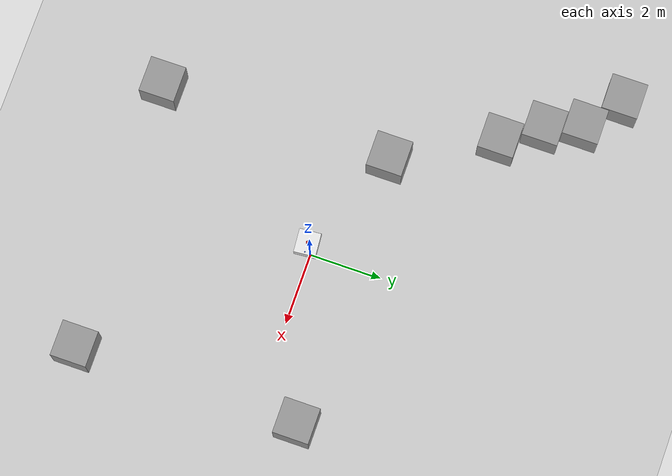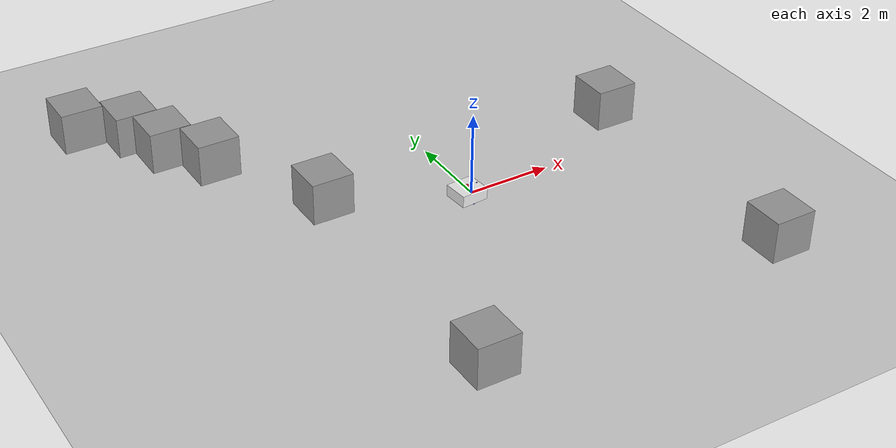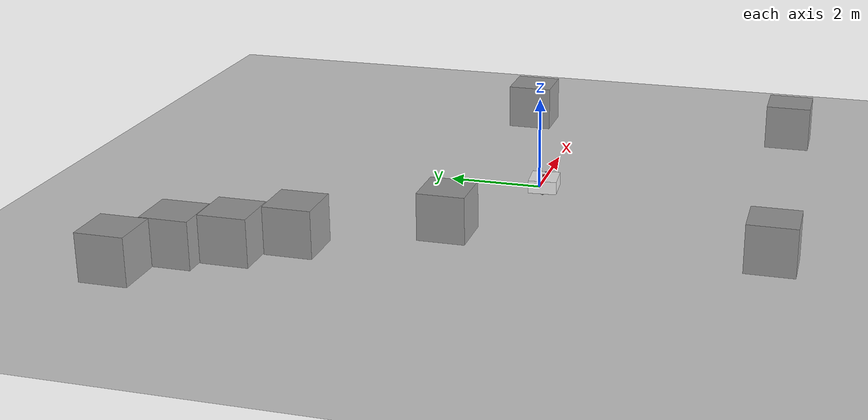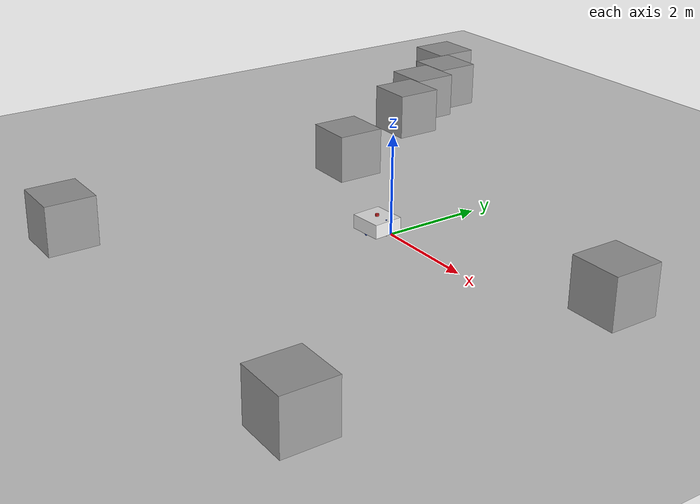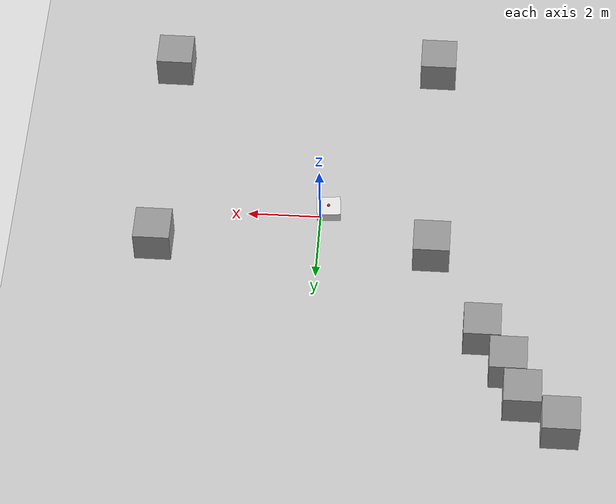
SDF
<sdf version="1.7">
 <world name="default">
  <light name="sun" type="directional">
   <pose>0 0 10 0 -0 0</pose>
   <diffuse>0.8 0.8 0.8 1</diffuse>
   <specular>0.2 0.2 0.2 1</specular>
   <attenuation>
    <range>1000</range>
    <constant>0.9</constant>
    <linear>0.01</linear>
    <quadratic>0.001</quadratic>
   </attenuation>
   <direction>-0.5 0.1 -0.9</direction>
   <spot><inner_angle>0</inner_angle><outer_angle>0</outer_angle><falloff>0</falloff></spot>
  </light>
  <model name="ground_plane">
   <static>1</static>
   <link name="link">
    <collision name="collision">
     <geometry><plane><normal>0 0 1</normal><size>100 100</size></plane></geometry>
     <surface><friction><ode><mu>100</mu><mu2>50</mu2></ode></friction></surface>
    </collision>
    <visual name="visual">
     <cast_shadows>0</cast_shadows>
     <geometry><plane><normal>0 0 1</normal><size>100 100</size></plane></geometry>
     <material>
      <script><uri>file://media/materials/scripts/gazebo.material</uri><name>Gazebo/Grey</name></script>
     </material>
    </visual>
   </link>
  </model>
  <gravity>0 0 -9.8</gravity>
  <magnetic_field>6e-06 2.3e-05 -4.2e-05</magnetic_field>
  <atmosphere type="adiabatic"/>
  <physics type="ode">
   <max_step_size>0.001</max_step_size>
   <real_time_factor>1</real_time_factor>
   <real_time_update_rate>1000</real_time_update_rate>
  </physics>
  <scene><ambient>0.4 0.4 0.4 1</ambient><background>0.7 0.7 0.7 1</background><shadows>1</shadows></scene>
  <audio><device>default</device></audio>
  <spherical_coordinates>
   <surface_model>EARTH_WGS84</surface_model>
   <latitude_deg>0</latitude_deg>
   <longitude_deg>0</longitude_deg>
   <elevation>0</elevation>
   <heading_deg>0</heading_deg>
  </spherical_coordinates>
  <model name="appfre">
   <link name="base_link">
    <inertial>
     <pose>0.007917 0 0.14125 0 -0 0</pose>
     <mass>2.4</mass>
     <inertia>
      <ixx>0.0838745</ixx>
      <ixy>0</ixy>
      <ixz>-0.00263625</ixz>
      <iyy>0.110417</iyy>
      <iyz>0</iyz>
      <izz>0.150863</izz>
     </inertia>
    </inertial>
    <collision name="base_link_fixed_joint_lump__chassis_collision">
     <pose>0 0 0.1405 0 -0 0</pose>
     <geometry><box><size>0.66 0.61 0.281</size></box></geometry>
    </collision>
    <collision name="base_link_fixed_joint_lump__laser_frame_collision_1">
     <pose>0 0 0.3 0 -0 0</pose>
     <geometry><cylinder><length>0.041</length><radius>0.038</radius></cylinder></geometry>
    </collision>
    <collision name="base_link_fixed_joint_lump__front_caster_wheel_collision_2">
     <pose>0.25 0 0 0 -0 0</pose>
     <geometry><sphere><radius>0.05</radius></sphere></geometry>
     <surface><friction><ode><mu>0.001</mu><mu2>0.001</mu2></ode></friction></surface>
    </collision>
    <collision name="base_link_fixed_joint_lump__front_diamond_collision_3">
     <pose>0.27 0 0.28 0 -0 0.785398</pose>
     <geometry><box><size>0.03 0.03 0.02</size></box></geometry>
    </collision>
    <collision name="base_link_fixed_joint_lump__rear_caster_wheel_collision_4">
     <pose>-0.25 0 0 0 -0 0</pose>
     <geometry><sphere><radius>0.05</radius></sphere></geometry>
     <surface><friction><ode><mu>0.001</mu><mu2>0.001</mu2></ode></friction></surface>
    </collision>
    <visual name="base_link_fixed_joint_lump__chassis_visual">
     <pose>0 0 0.1405 0 -0 0</pose>
     <geometry><box><size>0.66 0.61 0.281</size></box></geometry>
     <material>
      <script><name>Gazebo/White</name><uri>file://media/materials/scripts/gazebo.material</uri></script>
     </material>
    </visual>
    <visual name="base_link_fixed_joint_lump__laser_frame_visual_1">
     <pose>0 0 0.3 0 -0 0</pose>
     <geometry><cylinder><length>0.041</length><radius>0.038</radius></cylinder></geometry>
     <material>
      <script><name>Gazebo/Red</name><uri>file://media/materials/scripts/gazebo.material</uri></script>
     </material>
    </visual>
    <visual name="base_link_fixed_joint_lump__front_caster_wheel_visual_2">
     <pose>0.25 0 0 0 -0 0</pose>
     <geometry><sphere><radius>0.05</radius></sphere></geometry>
     <material>
      <script><name>Gazebo/Black</name><uri>file://media/materials/scripts/gazebo.material</uri></script>
     </material>
    </visual>
    <visual name="base_link_fixed_joint_lump__front_diamond_visual_3">
     <pose>0.27 0 0.28 0 -0 0.785398</pose>
     <geometry><box><size>0.03 0.03 0.02</size></box></geometry>
     <material>
      <script><name>Gazebo/Blue</name><uri>file://media/materials/scripts/gazebo.material</uri></script>
     </material>
    </visual>
    <visual name="base_link_fixed_joint_lump__rear_caster_wheel_visual_4">
     <pose>-0.25 0 0 0 -0 0</pose>
     <geometry><sphere><radius>0.05</radius></sphere></geometry>
     <material>
      <script><name>Gazebo/Black</name><uri>file://media/materials/scripts/gazebo.material</uri></script>
     </material>
    </visual>
    <sensor name="rplidar_a2m12" type="ray">
     <visualize>1</visualize>
     <update_rate>10</update_rate>
     <ray>
      <scan>
       <horizontal>
        <samples>360</samples>
        <resolution>1</resolution>
        <min_angle>-3.14</min_angle>
        <max_angle>3.14</max_angle>
       </horizontal>
       <vertical><samples>1</samples><min_angle>0</min_angle><max_angle>0</max_angle></vertical>
      </scan>
      <range><min>0.3</min><max>12</max><resolution>1</resolution></range>
     </ray>
     <plugin name="laser_controller" filename="./src/appfre/plugins/libgazebo_ros_ray_sensor.so">
      <ros><argument>~/out:=scan</argument></ros>
      <output_type>sensor_msgs/LaserScan</output_type>
      <frame_name>laser_frame</frame_name>
     </plugin>
     <pose>0 0 0.3 0 -0 0</pose>
    </sensor>
   </link>
   <joint name="left_wheel_joint" type="revolute">
    <pose relative_to="base_link">0 0.25 0 -1.5708 0 0</pose>
    <parent>base_link</parent>
    <child>left_wheel</child>
    <axis>
     <xyz>0 0 1</xyz>
     <limit><lower>-1e+16</lower><upper>1e+16</upper></limit>
     <dynamics><spring_reference>0</spring_reference><spring_stiffness>0</spring_stiffness></dynamics>
    </axis>
   </joint>
   <link name="left_wheel">
    <pose relative_to="left_wheel_joint">0 0 0 0 -0 0</pose>
    <inertial>
     <mass>0.1</mass>
     <inertia>
      <ixx>7.58333e-05</ixx>
      <ixy>0</ixy>
      <ixz>0</ixz>
      <iyy>7.58333e-05</iyy>
      <iyz>0</iyz>
      <izz>0.000125</izz>
     </inertia>
    </inertial>
    <collision name="left_wheel_collision">
     <geometry><cylinder><length>0.04</length><radius>0.05</radius></cylinder></geometry>
    </collision>
    <visual name="left_wheel_visual">
     <geometry><cylinder><length>0.04</length><radius>0.05</radius></cylinder></geometry>
     <material>
      <script><name>Gazebo/Blue</name><uri>file://media/materials/scripts/gazebo.material</uri></script>
     </material>
    </visual>
   </link>
   <joint name="right_wheel_joint" type="revolute">
    <pose relative_to="base_link">0 -0.25 0 1.5708 -0 0</pose>
    <parent>base_link</parent>
    <child>right_wheel</child>
    <axis>
     <xyz>0 0 -1</xyz>
     <limit><lower>-1e+16</lower><upper>1e+16</upper></limit>
     <dynamics><spring_reference>0</spring_reference><spring_stiffness>0</spring_stiffness></dynamics>
    </axis>
   </joint>
   <link name="right_wheel">
    <pose relative_to="right_wheel_joint">0 0 0 0 -0 0</pose>
    <inertial>
     <mass>0.1</mass>
     <inertia>
      <ixx>7.58333e-05</ixx>
      <ixy>0</ixy>
      <ixz>0</ixz>
      <iyy>7.58333e-05</iyy>
      <iyz>0</iyz>
      <izz>0.000125</izz>
     </inertia>
    </inertial>
    <collision name="right_wheel_collision">
     <geometry><cylinder><length>0.04</length><radius>0.05</radius></cylinder></geometry>
    </collision>
    <visual name="right_wheel_visual">
     <geometry><cylinder><length>0.04</length><radius>0.05</radius></cylinder></geometry>
     <material>
      <script><name>Gazebo/Blue</name><uri>file://media/materials/scripts/gazebo.material</uri></script>
     </material>
    </visual>
   </link>
   <static>0</static>
   <plugin name="diff_drive" filename="libgazebo_ros_diff_drive.so">
    <left_joint>left_wheel_joint</left_joint>
    <right_joint>right_wheel_joint</right_joint>
    <wheel_separation>0.5</wheel_separation>
    <wheel_diameter>0.1</wheel_diameter>
    <max_wheel_torque>200</max_wheel_torque>
    <max_wheel_acceleration>10</max_wheel_acceleration>
    <odometry_frame>odom</odometry_frame>
    <robot_base_frame>base_link</robot_base_frame>
    <publish_odom>1</publish_odom>
    <publish_odom_tf>1</publish_odom_tf>
    <publish_wheel_tf>1</publish_wheel_tf>
   </plugin>
   <pose>-0.226293 -0.164884 0.055001 0 3e-06 0.083729</pose>
  </model>
  <model name="unit_box">
   <pose>-3.07223 -5.30909 0.504995 1e-05 0 4e-06</pose>
   <link name="link">
    <inertial>
     <mass>1</mass>
     <inertia>
      <ixx>0.166667</ixx>
      <ixy>0</ixy>
      <ixz>0</ixz>
      <iyy>0.166667</iyy>
      <iyz>0</iyz>
      <izz>0.166667</izz>
     </inertia>
    </inertial>
    <collision name="collision"><geometry><box><size>1 1 1</size></box></geometry></collision>
    <visual name="visual">
     <geometry><box><size>1 1 1</size></box></geometry>
     <material>
      <script><name>Gazebo/Grey</name><uri>file://media/materials/scripts/gazebo.material</uri></script>
     </material>
    </visual>
   </link>
  </model>
  <model name="unit_box_0">
   <pose>4.50354 1.20298 0.504995 1e-05 0 4e-06</pose>
   <link name="link">
    <inertial>
     <mass>1</mass>
     <inertia>
      <ixx>0.166667</ixx>
      <ixy>0</ixy>
      <ixz>0</ixz>
      <iyy>0.166667</iyy>
      <iyz>0</iyz>
      <izz>0.166667</izz>
     </inertia>
    </inertial>
    <collision name="collision"><geometry><box><size>1 1 1</size></box></geometry></collision>
    <visual name="visual">
     <geometry><box><size>1 1 1</size></box></geometry>
     <material>
      <script><name>Gazebo/Grey</name><uri>file://media/materials/scripts/gazebo.material</uri></script>
     </material>
    </visual>
   </link>
  </model>
  <model name="unit_box_1">
   <pose>4.49835 -5.03619 0.504995 1e-05 0 4e-06</pose>
   <link name="link">
    <inertial>
     <mass>1</mass>
     <inertia>
      <ixx>0.166667</ixx>
      <ixy>0</ixy>
      <ixz>0</ixz>
      <iyy>0.166667</iyy>
      <iyz>0</iyz>
      <izz>0.166667</izz>
     </inertia>
    </inertial>
    <collision name="collision"><geometry><box><size>1 1 1</size></box></geometry></collision>
    <visual name="visual">
     <geometry><box><size>1 1 1</size></box></geometry>
     <material>
      <script><name>Gazebo/Grey</name><uri>file://media/materials/scripts/gazebo.material</uri></script>
     </material>
    </visual>
   </link>
  </model>
  <model name="unit_box_2">
   <pose>-3.1349 1.16226 0.504995 1e-05 0 4e-06</pose>
   <link name="link">
    <inertial>
     <mass>1</mass>
     <inertia>
      <ixx>0.166667</ixx>
      <ixy>0</ixy>
      <ixz>0</ixz>
      <iyy>0.166667</iyy>
      <iyz>0</iyz>
      <izz>0.166667</izz>
     </inertia>
    </inertial>
    <collision name="collision"><geometry><box><size>1 1 1</size></box></geometry></collision>
    <visual name="visual">
     <geometry><box><size>1 1 1</size></box></geometry>
     <material>
      <script><name>Gazebo/Grey</name><uri>file://media/materials/scripts/gazebo.material</uri></script>
     </material>
    </visual>
   </link>
  </model>
  <model name="unit_box_3">
   <pose>-4.59577 3.82299 0.505002 -4e-06 -0 -1.7e-05</pose>
   <link name="link">
    <inertial>
     <mass>1</mass>
     <inertia>
      <ixx>0.166667</ixx>
      <ixy>0</ixy>
      <ixz>0</ixz>
      <iyy>0.166667</iyy>
      <iyz>0</iyz>
      <izz>0.166667</izz>
     </inertia>
    </inertial>
    <collision name="collision"><geometry><box><size>1 1 1</size></box></geometry></collision>
    <visual name="visual">
     <geometry><box><size>1 1 1</size></box></geometry>
     <material>
      <script><name>Gazebo/Grey</name><uri>file://media/materials/scripts/gazebo.material</uri></script>
     </material>
    </visual>
   </link>
  </model>
  <model name="unit_box_3_clone">
   <pose>-5.30963 4.8449 0.504998 -1e-06 4e-06 -2.2e-05</pose>
   <link name="link">
    <inertial>
     <mass>1</mass>
     <inertia>
      <ixx>0.166667</ixx>
      <ixy>0</ixy>
      <ixz>0</ixz>
      <iyy>0.166667</iyy>
      <iyz>0</iyz>
      <izz>0.166667</izz>
     </inertia>
    </inertial>
    <collision name="collision"><geometry><box><size>1 1 1</size></box></geometry></collision>
    <visual name="visual">
     <geometry><box><size>1 1 1</size></box></geometry>
     <material>
      <script><name>Gazebo/Grey</name><uri>file://media/materials/scripts/gazebo.material</uri></script>
     </material>
    </visual>
   </link>
  </model>
  <model name="unit_box_3_clone_0">
   <pose>-5.70502 5.85927 0.504995 -9e-06 -1e-06 -1.8e-05</pose>
   <link name="link">
    <inertial>
     <mass>1</mass>
     <inertia>
      <ixx>0.166667</ixx>
      <ixy>0</ixy>
      <ixz>0</ixz>
      <iyy>0.166667</iyy>
      <iyz>0</iyz>
      <izz>0.166667</izz>
     </inertia>
    </inertial>
    <collision name="collision"><geometry><box><size>1 1 1</size></box></geometry></collision>
    <visual name="visual">
     <geometry><box><size>1 1 1</size></box></geometry>
     <material>
      <script><name>Gazebo/Grey</name><uri>file://media/materials/scripts/gazebo.material</uri></script>
     </material>
    </visual>
   </link>
  </model>
  <model name="unit_box_3_clone_1">
   <pose>-6.72287 6.64418 0.504995 -9e-06 -1e-06 -1.8e-05</pose>
   <link name="link">
    <inertial>
     <mass>1</mass>
     <inertia>
      <ixx>0.166667</ixx>
      <ixy>0</ixy>
      <ixz>0</ixz>
      <iyy>0.166667</iyy>
      <iyz>0</iyz>
      <izz>0.166667</izz>
     </inertia>
    </inertial>
    <collision name="collision"><geometry><box><size>1 1 1</size></box></geometry></collision>
    <visual name="visual">
     <geometry><box><size>1 1 1</size></box></geometry>
     <material>
      <script><name>Gazebo/Grey</name><uri>file://media/materials/scripts/gazebo.material</uri></script>
     </material>
    </visual>
   </link>
  </model>
 </world>
</sdf>
